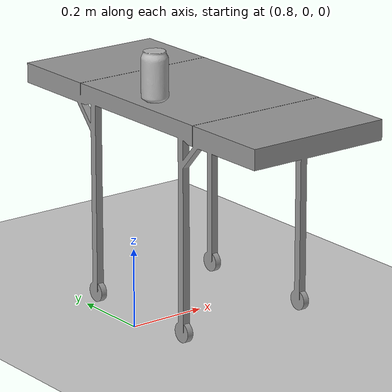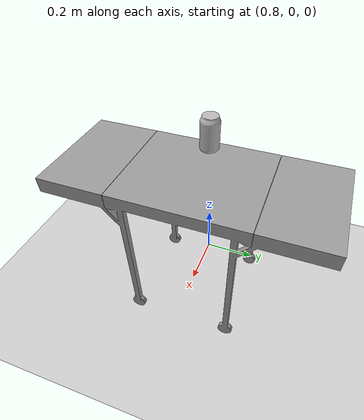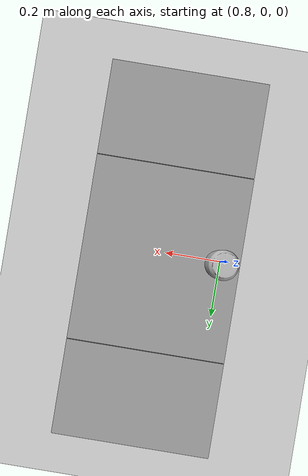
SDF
<sdf version="1.6">
 <world name="default">
  <light name="sun" type="directional">
   <pose>0 0 10 0 -0 0</pose>
   <diffuse>0.8 0.8 0.8 1</diffuse>
   <specular>0.2 0.2 0.2 1</specular>
   <attenuation>
    <range>1000</range>
    <constant>0.9</constant>
    <linear>0.01</linear>
    <quadratic>0.001</quadratic>
   </attenuation>
   <direction>-0.5 0.1 -0.9</direction>
  </light>
  <model name="ground_plane">
   <static>1</static>
   <link name="link">
    <collision name="collision">
     <geometry><plane><normal>0 0 1</normal><size>100 100</size></plane></geometry>
     <surface>
      <contact><collide_bitmask>65535</collide_bitmask></contact>
      <friction><ode><mu>100</mu><mu2>50</mu2></ode></friction>
     </surface>
    </collision>
    <visual name="visual">
     <cast_shadows>0</cast_shadows>
     <geometry><plane><normal>0 0 1</normal><size>100 100</size></plane></geometry>
     <material>
      <script><uri>file://media/materials/scripts/gazebo.material</uri><name>Gazebo/Grey</name></script>
     </material>
    </visual>
   </link>
  </model>
  <gravity>0 0 -9.8</gravity>
  <magnetic_field>6e-06 2.3e-05 -4.2e-05</magnetic_field>
  <atmosphere type="adiabatic"/>
  <physics name="default_physics" default="0" type="ode">
   <max_step_size>0.001</max_step_size>
   <real_time_factor>1</real_time_factor>
   <real_time_update_rate>1000</real_time_update_rate>
  </physics>
  <scene><ambient>0.4 0.4 0.4 1</ambient><background>0.7 0.7 0.7 1</background><shadows>1</shadows></scene>
  <audio><device>default</device></audio>
  <spherical_coordinates>
   <surface_model>EARTH_WGS84</surface_model>
   <latitude_deg>0</latitude_deg>
   <longitude_deg>0</longitude_deg>
   <elevation>0</elevation>
   <heading_deg>0</heading_deg>
  </spherical_coordinates>
  <model name="ecst_table_v5">
   <static>1</static>
   <link name="link_1">
    <inertial>
     <mass>5</mass>
     <inertia>
      <ixx>0.188383</ixx>
      <ixy>0</ixy>
      <ixz>0</ixz>
      <iyy>0.470263</iyy>
      <iyz>0</iyz>
      <izz>0.402848</izz>
     </inertia>
    </inertial>
    <visual name="visual">
     <geometry>
      <mesh><uri>/home/jason/Downloads/CALI_TABLE_MODEL_METERS_2_updated.stl</uri><scale>1 1 1</scale></mesh>
     </geometry>
     <material>
      <lighting>1</lighting>
      <script><uri>file://media/materials/scripts/gazebo.material</uri><name>Gazebo/Grey</name></script>
      <emissive>0 0 0 1</emissive>
      <shader type="vertex"><normal_map>__default__</normal_map></shader>
      <ambient>0.3 0.3 0.3 1</ambient>
      <diffuse>0.7 0.7 0.7 1</diffuse>
      <specular>0.01 0.01 0.01 1</specular>
     </material>
    </visual>
    <collision name="collision">
     <geometry><box><size>0.906426 0.381 0.554037</size></box></geometry>
     <surface>
      <friction>
       <ode><mu>100</mu><mu2>100</mu2><fdir1>0 0 0</fdir1><slip1>0</slip1><slip2>0</slip2></ode>
       <torsional>
        <coefficient>1</coefficient>
        <patch_radius>0</patch_radius>
        <surface_radius>0</surface_radius>
        <use_patch_radius>1</use_patch_radius>
        <ode><slip>0</slip></ode>
       </torsional>
      </friction>
      <bounce><restitution_coefficient>0</restitution_coefficient><threshold>1e+06</threshold></bounce>
      <contact>
       <collide_without_contact>0</collide_without_contact>
       <collide_without_contact_bitmask>1</collide_without_contact_bitmask>
       <collide_bitmask>1</collide_bitmask>
       <ode>
        <soft_cfm>0</soft_cfm>
        <soft_erp>0.2</soft_erp>
        <kp>1e+13</kp>
        <kd>1</kd>
        <max_vel>0.01</max_vel>
        <min_depth>0</min_depth>
       </ode>
       <bullet>
        <split_impulse>1</split_impulse>
        <split_impulse_penetration_threshold>-0.01</split_impulse_penetration_threshold>
        <soft_cfm>0</soft_cfm>
        <soft_erp>0.2</soft_erp>
        <kp>1e+13</kp>
        <kd>1</kd>
       </bullet>
      </contact>
     </surface>
    </collision>
   </link>
   <pose>1.01468 0.024001 0.277008 -1e-06 -0 1.57086</pose>
  </model>
  <model name="coke_can">
   <link name="link">
    <inertial>
     <pose>0 0 0.06 0 -0 0</pose>
     <mass>0.39</mass>
     <inertia>
      <ixx>0.00055575</ixx>
      <ixy>0</ixy>
      <ixz>0</ixz>
      <iyy>0.00055575</iyy>
      <iyz>0</iyz>
      <izz>0.0001755</izz>
     </inertia>
    </inertial>
    <collision name="collision">
     <pose>0.003937 0.004724 -0.18 0 -0 0</pose>
     <geometry><mesh><uri>model://coke_can/meshes/coke_can.dae</uri></mesh></geometry>
     <surface>
      <friction><ode><mu>100</mu><mu2>100</mu2></ode></friction>
      <contact><ode><kp>1e+07</kp><kd>1</kd><min_depth>0.001</min_depth><max_vel>0.1</max_vel></ode></contact>
     </surface>
    </collision>
    <visual name="visual">
     <pose>0.003937 0.004724 -0.18 0 -0 0</pose>
     <geometry><mesh><uri>model://coke_can/meshes/coke_can.dae</uri></mesh></geometry>
    </visual>
   </link>
   <pose>0.877005 0.015519 0.551464 -0.011038 0.004288 0.254946</pose>
  </model>
 </world>
</sdf>
